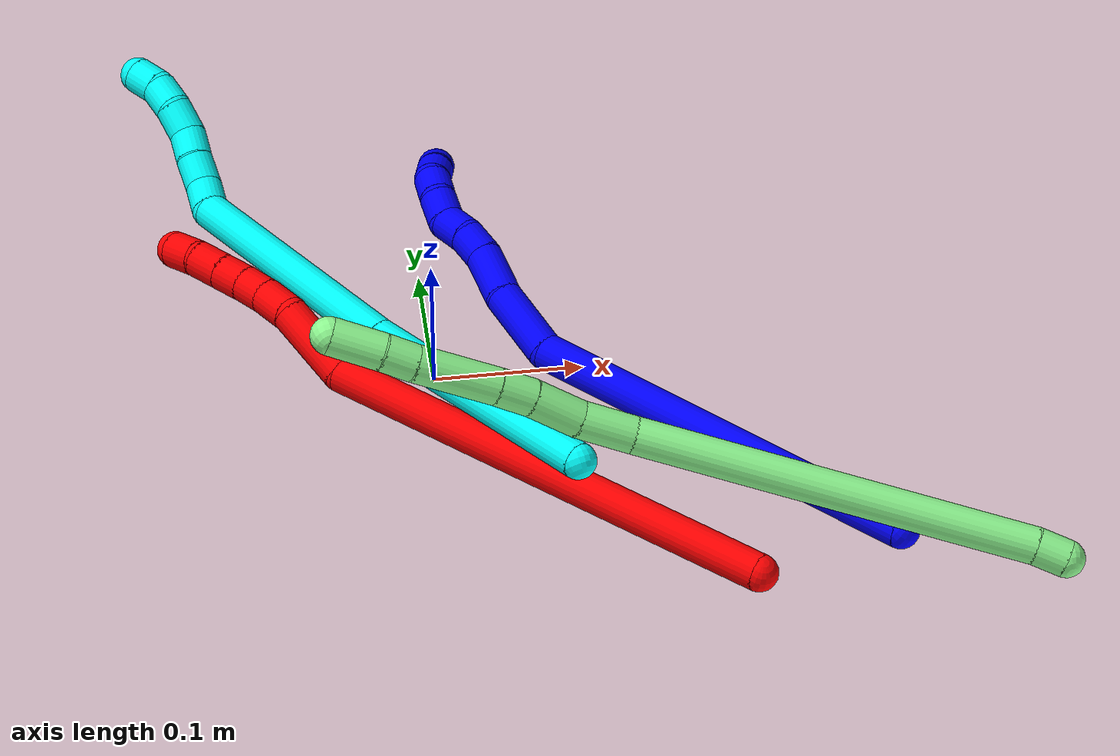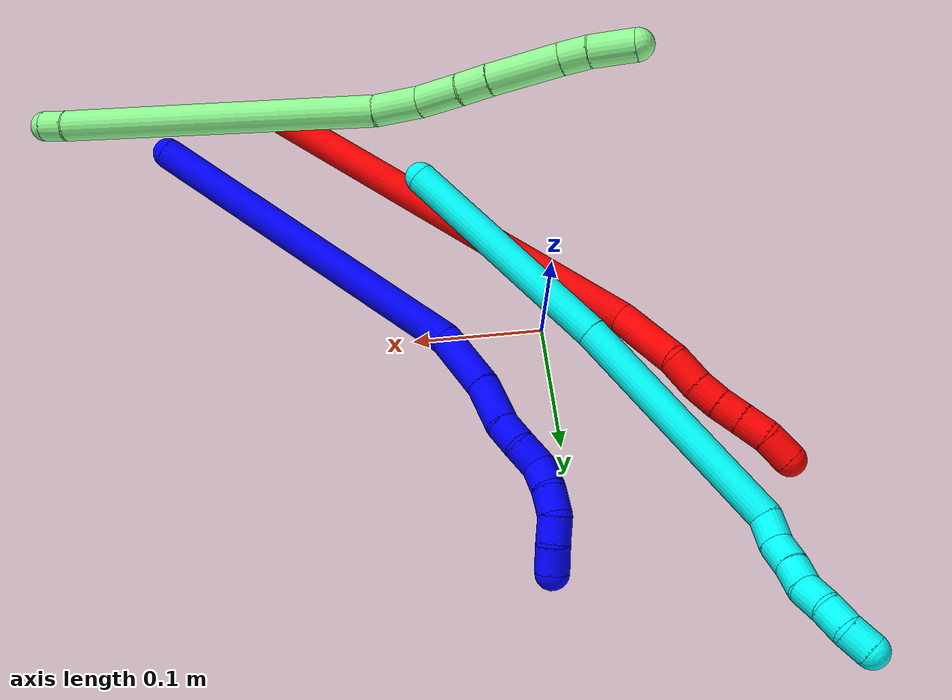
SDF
<sdf version="1.7">
 <world name="default">
  <model name="1">
   <static>0</static>
   <link name="1">
    <collision name="collision-cylinder-e_1_1_4">
     <pose>-0.063606 0.108191 -0.068221 -2.13339 -0.461484 0.805209</pose>
     <geometry><cylinder><radius>0.0125</radius><length>0.285693</length></cylinder></geometry>
     <surface>
      <friction><ode><mu>1.16</mu><mu2>1.16</mu2><slip1>0</slip1><slip2>0</slip2></ode></friction>
      <contact><ode><kp>1e+06</kp><kd>1</kd><max_vel>0</max_vel><min_depth>0.001</min_depth></ode></contact>
     </surface>
    </collision>
    <visual name="visual-cylinder-e_1_1_4">
     <pose>-0.063606 0.108191 -0.068221 -2.13339 -0.461484 0.805209</pose>
     <geometry><cylinder><radius>0.0125</radius><length>0.285693</length></cylinder></geometry>
     <material><ambient>0 0 1 1</ambient></material>
    </visual>
    <collision name="collision-cylinder-e_2_4_5">
     <pose>-0.133807 0.241659 -0.141501 -1.76833 -0.250417 0.304729</pose>
     <geometry><cylinder><radius>0.0125</radius><length>0.053216</length></cylinder></geometry>
     <surface>
      <friction><ode><mu>1.16</mu><mu2>1.16</mu2><slip1>0</slip1><slip2>0</slip2></ode></friction>
      <contact><ode><kp>1e+06</kp><kd>1</kd><max_vel>0</max_vel><min_depth>0.001</min_depth></ode></contact>
     </surface>
    </collision>
    <visual name="visual-cylinder-e_2_4_5">
     <pose>-0.133807 0.241659 -0.141501 -1.76833 -0.250417 0.304729</pose>
     <geometry><cylinder><radius>0.0125</radius><length>0.053216</length></cylinder></geometry>
     <material><ambient>0 0 1 1</ambient></material>
    </visual>
    <collision name="collision-cylinder-e_3_5_6">
     <pose>-0.141737 0.285508 -0.148725 -1.68683 -0.071394 0.080189</pose>
     <geometry><cylinder><radius>0.0125</radius><length>0.037493</length></cylinder></geometry>
     <surface>
      <friction><ode><mu>1.16</mu><mu2>1.16</mu2><slip1>0</slip1><slip2>0</slip2></ode></friction>
      <contact><ode><kp>1e+06</kp><kd>1</kd><max_vel>0</max_vel><min_depth>0.001</min_depth></ode></contact>
     </surface>
    </collision>
    <visual name="visual-cylinder-e_3_5_6">
     <pose>-0.141737 0.285508 -0.148725 -1.68683 -0.071394 0.080189</pose>
     <geometry><cylinder><radius>0.0125</radius><length>0.037493</length></cylinder></geometry>
     <material><ambient>0 0 1 1</ambient></material>
    </visual>
    <collision name="collision-cylinder-e_4_6_7">
     <pose>-0.145954 0.314001 -0.153238 -1.80321 -0.275259 0.346715</pose>
     <geometry><cylinder><radius>0.0125</radius><length>0.021185</length></cylinder></geometry>
     <surface>
      <friction><ode><mu>1.16</mu><mu2>1.16</mu2><slip1>0</slip1><slip2>0</slip2></ode></friction>
      <contact><ode><kp>1e+06</kp><kd>1</kd><max_vel>0</max_vel><min_depth>0.001</min_depth></ode></contact>
     </surface>
    </collision>
    <visual name="visual-cylinder-e_4_6_7">
     <pose>-0.145954 0.314001 -0.153238 -1.80321 -0.275259 0.346715</pose>
     <geometry><cylinder><radius>0.0125</radius><length>0.021185</length></cylinder></geometry>
     <material><ambient>0 0 1 1</ambient></material>
    </visual>
    <collision name="collision-cylinder-e_5_7_8">
     <pose>-0.151347 0.333117 -0.160341 -2.04802 -0.238231 0.388292</pose>
     <geometry><cylinder><radius>0.0125</radius><length>0.021307</length></cylinder></geometry>
     <surface>
      <friction><ode><mu>1.16</mu><mu2>1.16</mu2><slip1>0</slip1><slip2>0</slip2></ode></friction>
      <contact><ode><kp>1e+06</kp><kd>1</kd><max_vel>0</max_vel><min_depth>0.001</min_depth></ode></contact>
     </surface>
    </collision>
    <visual name="visual-cylinder-e_5_7_8">
     <pose>-0.151347 0.333117 -0.160341 -2.04802 -0.238231 0.388292</pose>
     <geometry><cylinder><radius>0.0125</radius><length>0.021307</length></cylinder></geometry>
     <material><ambient>0 0 1 1</ambient></material>
    </visual>
    <collision name="collision-cylinder-e_6_8_9">
     <pose>-0.15434 0.352674 -0.165393 -1.59943 -0.046162 0.047503</pose>
     <geometry><cylinder><radius>0.0125</radius><length>0.020754</length></cylinder></geometry>
     <surface>
      <friction><ode><mu>1.16</mu><mu2>1.16</mu2><slip1>0</slip1><slip2>0</slip2></ode></friction>
      <contact><ode><kp>1e+06</kp><kd>1</kd><max_vel>0</max_vel><min_depth>0.001</min_depth></ode></contact>
     </surface>
    </collision>
    <visual name="visual-cylinder-e_6_8_9">
     <pose>-0.15434 0.352674 -0.165393 -1.59943 -0.046162 0.047503</pose>
     <geometry><cylinder><radius>0.0125</radius><length>0.020754</length></cylinder></geometry>
     <material><ambient>0 0 1 1</ambient></material>
    </visual>
    <collision name="collision-cylinder-e_7_9_10">
     <pose>-0.153124 0.372863 -0.167551 -1.75802 0.167791 -0.202346</pose>
     <geometry><cylinder><radius>0.0125</radius><length>0.020289</length></cylinder></geometry>
     <surface>
      <friction><ode><mu>1.16</mu><mu2>1.16</mu2><slip1>0</slip1><slip2>0</slip2></ode></friction>
      <contact><ode><kp>1e+06</kp><kd>1</kd><max_vel>0</max_vel><min_depth>0.001</min_depth></ode></contact>
     </surface>
    </collision>
    <visual name="visual-cylinder-e_7_9_10">
     <pose>-0.153124 0.372863 -0.167551 -1.75802 0.167791 -0.202346</pose>
     <geometry><cylinder><radius>0.0125</radius><length>0.020289</length></cylinder></geometry>
     <material><ambient>0 0 1 1</ambient></material>
    </visual>
    <collision name="collision-cylinder-e_8_10_11">
     <pose>-0.146012 0.390614 -0.172305 -1.92077 0.570919 -0.794456</pose>
     <geometry><cylinder><radius>0.0125</radius><length>0.020051</length></cylinder></geometry>
     <surface>
      <friction><ode><mu>1.16</mu><mu2>1.16</mu2><slip1>0</slip1><slip2>0</slip2></ode></friction>
      <contact><ode><kp>1e+06</kp><kd>1</kd><max_vel>0</max_vel><min_depth>0.001</min_depth></ode></contact>
     </surface>
    </collision>
    <visual name="visual-cylinder-e_8_10_11">
     <pose>-0.146012 0.390614 -0.172305 -1.92077 0.570919 -0.794456</pose>
     <geometry><cylinder><radius>0.0125</radius><length>0.020051</length></cylinder></geometry>
     <material><ambient>0 0 1 1</ambient></material>
    </visual>
    <collision name="collision-cylinder-e_9_11_2">
     <pose>-0.13494 0.405295 -0.179941 -2.18289 0.600491 -1.07442</pose>
     <geometry><cylinder><radius>0.0125</radius><length>0.020012</length></cylinder></geometry>
     <surface>
      <friction><ode><mu>1.16</mu><mu2>1.16</mu2><slip1>0</slip1><slip2>0</slip2></ode></friction>
      <contact><ode><kp>1e+06</kp><kd>1</kd><max_vel>0</max_vel><min_depth>0.001</min_depth></ode></contact>
     </surface>
    </collision>
    <visual name="visual-cylinder-e_9_11_2">
     <pose>-0.13494 0.405295 -0.179941 -2.18289 0.600491 -1.07442</pose>
     <geometry><cylinder><radius>0.0125</radius><length>0.020012</length></cylinder></geometry>
     <material><ambient>0 0 1 1</ambient></material>
    </visual>
    <collision name="collision-sphere-2">
     <pose>-0.129287 0.412052 -0.184685 0 -0 0</pose>
     <geometry><sphere><radius>0.0125</radius></sphere></geometry>
     <surface>
      <friction><ode><mu>1.16</mu><mu2>1.16</mu2><slip1>0</slip1><slip2>0</slip2></ode></friction>
      <contact><ode><kp>1e+06</kp><kd>1</kd><max_vel>0</max_vel><min_depth>0.001</min_depth></ode></contact>
     </surface>
    </collision>
    <visual name="visual-sphere-2">
     <pose>-0.129287 0.412052 -0.184685 0 -0 0</pose>
     <geometry><sphere><radius>0.0125</radius></sphere></geometry>
     <material><ambient>0 0 1 1</ambient></material>
    </visual>
    <collision name="collision-sphere-11">
     <pose>-0.140594 0.398538 -0.175198 0 -0 0</pose>
     <geometry><sphere><radius>0.0125</radius></sphere></geometry>
     <surface>
      <friction><ode><mu>1.16</mu><mu2>1.16</mu2><slip1>0</slip1><slip2>0</slip2></ode></friction>
      <contact><ode><kp>1e+06</kp><kd>1</kd><max_vel>0</max_vel><min_depth>0.001</min_depth></ode></contact>
     </surface>
    </collision>
    <visual name="visual-sphere-11">
     <pose>-0.140594 0.398538 -0.175198 0 -0 0</pose>
     <geometry><sphere><radius>0.0125</radius></sphere></geometry>
     <material><ambient>0 0 1 1</ambient></material>
    </visual>
    <collision name="collision-sphere-10">
     <pose>-0.15143 0.38269 -0.169413 0 -0 0</pose>
     <geometry><sphere><radius>0.0125</radius></sphere></geometry>
     <surface>
      <friction><ode><mu>1.16</mu><mu2>1.16</mu2><slip1>0</slip1><slip2>0</slip2></ode></friction>
      <contact><ode><kp>1e+06</kp><kd>1</kd><max_vel>0</max_vel><min_depth>0.001</min_depth></ode></contact>
     </surface>
    </collision>
    <visual name="visual-sphere-10">
     <pose>-0.15143 0.38269 -0.169413 0 -0 0</pose>
     <geometry><sphere><radius>0.0125</radius></sphere></geometry>
     <material><ambient>0 0 1 1</ambient></material>
    </visual>
    <collision name="collision-sphere-9">
     <pose>-0.154818 0.363036 -0.165689 0 -0 0</pose>
     <geometry><sphere><radius>0.0125</radius></sphere></geometry>
     <surface>
      <friction><ode><mu>1.16</mu><mu2>1.16</mu2><slip1>0</slip1><slip2>0</slip2></ode></friction>
      <contact><ode><kp>1e+06</kp><kd>1</kd><max_vel>0</max_vel><min_depth>0.001</min_depth></ode></contact>
     </surface>
    </collision>
    <visual name="visual-sphere-9">
     <pose>-0.154818 0.363036 -0.165689 0 -0 0</pose>
     <geometry><sphere><radius>0.0125</radius></sphere></geometry>
     <material><ambient>0 0 1 1</ambient></material>
    </visual>
    <collision name="collision-sphere-4">
     <pose>-0.127213 0.216382 -0.136442 0 -0 0</pose>
     <geometry><sphere><radius>0.0125</radius></sphere></geometry>
     <surface>
      <friction><ode><mu>1.16</mu><mu2>1.16</mu2><slip1>0</slip1><slip2>0</slip2></ode></friction>
      <contact><ode><kp>1e+06</kp><kd>1</kd><max_vel>0</max_vel><min_depth>0.001</min_depth></ode></contact>
     </surface>
    </collision>
    <visual name="visual-sphere-4">
     <pose>-0.127213 0.216382 -0.136442 0 -0 0</pose>
     <geometry><sphere><radius>0.0125</radius></sphere></geometry>
     <material><ambient>0 0 1 1</ambient></material>
    </visual>
    <collision name="collision-sphere-1">
     <geometry><sphere><radius>0.0125</radius></sphere></geometry>
     <surface>
      <friction><ode><mu>1.16</mu><mu2>1.16</mu2><slip1>0</slip1><slip2>0</slip2></ode></friction>
      <contact><ode><kp>1e+06</kp><kd>1</kd><max_vel>0</max_vel><min_depth>0.001</min_depth></ode></contact>
     </surface>
    </collision>
    <visual name="visual-sphere-1">
     <geometry><sphere><radius>0.0125</radius></sphere></geometry>
     <material><ambient>0 0 1 1</ambient></material>
    </visual>
    <collision name="collision-sphere-8">
     <pose>-0.153861 0.342313 -0.165096 0 -0 0</pose>
     <geometry><sphere><radius>0.0125</radius></sphere></geometry>
     <surface>
      <friction><ode><mu>1.16</mu><mu2>1.16</mu2><slip1>0</slip1><slip2>0</slip2></ode></friction>
      <contact><ode><kp>1e+06</kp><kd>1</kd><max_vel>0</max_vel><min_depth>0.001</min_depth></ode></contact>
     </surface>
    </collision>
    <visual name="visual-sphere-8">
     <pose>-0.153861 0.342313 -0.165096 0 -0 0</pose>
     <geometry><sphere><radius>0.0125</radius></sphere></geometry>
     <material><ambient>0 0 1 1</ambient></material>
    </visual>
    <collision name="collision-sphere-5">
     <pose>-0.1404 0.266935 -0.14656 0 -0 0</pose>
     <geometry><sphere><radius>0.0125</radius></sphere></geometry>
     <surface>
      <friction><ode><mu>1.16</mu><mu2>1.16</mu2><slip1>0</slip1><slip2>0</slip2></ode></friction>
      <contact><ode><kp>1e+06</kp><kd>1</kd><max_vel>0</max_vel><min_depth>0.001</min_depth></ode></contact>
     </surface>
    </collision>
    <visual name="visual-sphere-5">
     <pose>-0.1404 0.266935 -0.14656 0 -0 0</pose>
     <geometry><sphere><radius>0.0125</radius></sphere></geometry>
     <material><ambient>0 0 1 1</ambient></material>
    </visual>
    <collision name="collision-sphere-6">
     <pose>-0.143075 0.304081 -0.15089 0 -0 0</pose>
     <geometry><sphere><radius>0.0125</radius></sphere></geometry>
     <surface>
      <friction><ode><mu>1.16</mu><mu2>1.16</mu2><slip1>0</slip1><slip2>0</slip2></ode></friction>
      <contact><ode><kp>1e+06</kp><kd>1</kd><max_vel>0</max_vel><min_depth>0.001</min_depth></ode></contact>
     </surface>
    </collision>
    <visual name="visual-sphere-6">
     <pose>-0.143075 0.304081 -0.15089 0 -0 0</pose>
     <geometry><sphere><radius>0.0125</radius></sphere></geometry>
     <material><ambient>0 0 1 1</ambient></material>
    </visual>
    <collision name="collision-sphere-7">
     <pose>-0.148833 0.323921 -0.155586 0 -0 0</pose>
     <geometry><sphere><radius>0.0125</radius></sphere></geometry>
     <surface>
      <friction><ode><mu>1.16</mu><mu2>1.16</mu2><slip1>0</slip1><slip2>0</slip2></ode></friction>
      <contact><ode><kp>1e+06</kp><kd>1</kd><max_vel>0</max_vel><min_depth>0.001</min_depth></ode></contact>
     </surface>
    </collision>
    <visual name="visual-sphere-7">
     <pose>-0.148833 0.323921 -0.155586 0 -0 0</pose>
     <geometry><sphere><radius>0.0125</radius></sphere></geometry>
     <material><ambient>0 0 1 1</ambient></material>
    </visual>
    <inertial>
     <pose>-0.097723 0.198102 -0.106294 0 -0 0</pose>
     <mass>0.5</mass>
     <inertia>
      <ixx>0.002495</ixx>
      <ixy>0</ixy>
      <ixz>0</ixz>
      <iyy>0.001103</iyy>
      <iyz>0</iyz>
      <izz>-0.000649</izz>
     </inertia>
    </inertial>
   </link>
   <pose>0.282916 -0.190446 0.012769 0.235091 0.56575 0.252354</pose>
  </model>
  <model name="2">
   <static>0</static>
   <link name="2">
    <collision name="collision-cylinder-e_1_1_4">
     <pose>-0.121181 0.103373 0.044527 -1.16408 -0.822285 0.558825</pose>
     <geometry><cylinder><radius>0.0125</radius><length>0.330778</length></cylinder></geometry>
     <surface>
      <friction><ode><mu>1.16</mu><mu2>1.16</mu2><slip1>0</slip1><slip2>0</slip2></ode></friction>
      <contact><ode><kp>1e+06</kp><kd>1</kd><max_vel>0</max_vel><min_depth>0.001</min_depth></ode></contact>
     </surface>
    </collision>
    <visual name="visual-cylinder-e_1_1_4">
     <pose>-0.121181 0.103373 0.044527 -1.16408 -0.822285 0.558825</pose>
     <geometry><cylinder><radius>0.0125</radius><length>0.330778</length></cylinder></geometry>
     <material><ambient>1 0 0 1</ambient></material>
    </visual>
    <collision name="collision-cylinder-e_2_4_5">
     <pose>-0.268485 0.218143 0.089789 -1.50637 -1.15867 1.10039</pose>
     <geometry><cylinder><radius>0.0125</radius><length>0.05702</length></cylinder></geometry>
     <surface>
      <friction><ode><mu>1.16</mu><mu2>1.16</mu2><slip1>0</slip1><slip2>0</slip2></ode></friction>
      <contact><ode><kp>1e+06</kp><kd>1</kd><max_vel>0</max_vel><min_depth>0.001</min_depth></ode></contact>
     </surface>
    </collision>
    <visual name="visual-cylinder-e_2_4_5">
     <pose>-0.268485 0.218143 0.089789 -1.50637 -1.15867 1.10039</pose>
     <geometry><cylinder><radius>0.0125</radius><length>0.05702</length></cylinder></geometry>
     <material><ambient>1 0 0 1</ambient></material>
    </visual>
    <collision name="collision-cylinder-e_3_5_6">
     <pose>-0.305881 0.234302 0.095413 -0.772429 -1.02635 0.450532</pose>
     <geometry><cylinder><radius>0.0125</radius><length>0.026356</length></cylinder></geometry>
     <surface>
      <friction><ode><mu>1.16</mu><mu2>1.16</mu2><slip1>0</slip1><slip2>0</slip2></ode></friction>
      <contact><ode><kp>1e+06</kp><kd>1</kd><max_vel>0</max_vel><min_depth>0.001</min_depth></ode></contact>
     </surface>
    </collision>
    <visual name="visual-cylinder-e_3_5_6">
     <pose>-0.305881 0.234302 0.095413 -0.772429 -1.02635 0.450532</pose>
     <geometry><cylinder><radius>0.0125</radius><length>0.026356</length></cylinder></geometry>
     <material><ambient>1 0 0 1</ambient></material>
    </visual>
    <collision name="collision-cylinder-e_4_6_7">
     <pose>-0.325422 0.244089 0.103664 -0.980862 -0.93946 0.529367</pose>
     <geometry><cylinder><radius>0.0125</radius><length>0.020486</length></cylinder></geometry>
     <surface>
      <friction><ode><mu>1.16</mu><mu2>1.16</mu2><slip1>0</slip1><slip2>0</slip2></ode></friction>
      <contact><ode><kp>1e+06</kp><kd>1</kd><max_vel>0</max_vel><min_depth>0.001</min_depth></ode></contact>
     </surface>
    </collision>
    <visual name="visual-cylinder-e_4_6_7">
     <pose>-0.325422 0.244089 0.103664 -0.980862 -0.93946 0.529367</pose>
     <geometry><cylinder><radius>0.0125</radius><length>0.020486</length></cylinder></geometry>
     <material><ambient>1 0 0 1</ambient></material>
    </visual>
    <collision name="collision-cylinder-e_5_7_8">
     <pose>-0.341407 0.254832 0.109908 -1.10424 -0.878174 0.563274</pose>
     <geometry><cylinder><radius>0.0125</radius><length>0.020055</length></cylinder></geometry>
     <surface>
      <friction><ode><mu>1.16</mu><mu2>1.16</mu2><slip1>0</slip1><slip2>0</slip2></ode></friction>
      <contact><ode><kp>1e+06</kp><kd>1</kd><max_vel>0</max_vel><min_depth>0.001</min_depth></ode></contact>
     </surface>
    </collision>
    <visual name="visual-cylinder-e_5_7_8">
     <pose>-0.341407 0.254832 0.109908 -1.10424 -0.878174 0.563274</pose>
     <geometry><cylinder><radius>0.0125</radius><length>0.020055</length></cylinder></geometry>
     <material><ambient>1 0 0 1</ambient></material>
    </visual>
    <collision name="collision-cylinder-e_6_8_9">
     <pose>-0.357733 0.266861 0.116058 -1.09275 -0.880657 0.558123</pose>
     <geometry><cylinder><radius>0.0125</radius><length>0.022327</length></cylinder></geometry>
     <surface>
      <friction><ode><mu>1.16</mu><mu2>1.16</mu2><slip1>0</slip1><slip2>0</slip2></ode></friction>
      <contact><ode><kp>1e+06</kp><kd>1</kd><max_vel>0</max_vel><min_depth>0.001</min_depth></ode></contact>
     </surface>
    </collision>
    <visual name="visual-cylinder-e_6_8_9">
     <pose>-0.357733 0.266861 0.116058 -1.09275 -0.880657 0.558123</pose>
     <geometry><cylinder><radius>0.0125</radius><length>0.022327</length></cylinder></geometry>
     <material><ambient>1 0 0 1</ambient></material>
    </visual>
    <collision name="collision-cylinder-e_7_9_2">
     <pose>-0.374847 0.27822 0.125173 -0.712341 -0.833476 0.326446</pose>
     <geometry><cylinder><radius>0.0125</radius><length>0.022978</length></cylinder></geometry>
     <surface>
      <friction><ode><mu>1.16</mu><mu2>1.16</mu2><slip1>0</slip1><slip2>0</slip2></ode></friction>
      <contact><ode><kp>1e+06</kp><kd>1</kd><max_vel>0</max_vel><min_depth>0.001</min_depth></ode></contact>
     </surface>
    </collision>
    <visual name="visual-cylinder-e_7_9_2">
     <pose>-0.374847 0.27822 0.125173 -0.712341 -0.833476 0.326446</pose>
     <geometry><cylinder><radius>0.0125</radius><length>0.022978</length></cylinder></geometry>
     <material><ambient>1 0 0 1</ambient></material>
    </visual>
    <collision name="collision-sphere-2">
     <pose>-0.383352 0.283269 0.131019 0 -0 0</pose>
     <geometry><sphere><radius>0.0125</radius></sphere></geometry>
     <surface>
      <friction><ode><mu>1.16</mu><mu2>1.16</mu2><slip1>0</slip1><slip2>0</slip2></ode></friction>
      <contact><ode><kp>1e+06</kp><kd>1</kd><max_vel>0</max_vel><min_depth>0.001</min_depth></ode></contact>
     </surface>
    </collision>
    <visual name="visual-sphere-2">
     <pose>-0.383352 0.283269 0.131019 0 -0 0</pose>
     <geometry><sphere><radius>0.0125</radius></sphere></geometry>
     <material><ambient>1 0 0 1</ambient></material>
    </visual>
    <collision name="collision-sphere-9">
     <pose>-0.366342 0.273172 0.119327 0 -0 0</pose>
     <geometry><sphere><radius>0.0125</radius></sphere></geometry>
     <surface>
      <friction><ode><mu>1.16</mu><mu2>1.16</mu2><slip1>0</slip1><slip2>0</slip2></ode></friction>
      <contact><ode><kp>1e+06</kp><kd>1</kd><max_vel>0</max_vel><min_depth>0.001</min_depth></ode></contact>
     </surface>
    </collision>
    <visual name="visual-sphere-9">
     <pose>-0.366342 0.273172 0.119327 0 -0 0</pose>
     <geometry><sphere><radius>0.0125</radius></sphere></geometry>
     <material><ambient>1 0 0 1</ambient></material>
    </visual>
    <collision name="collision-sphere-4">
     <pose>-0.242362 0.206747 0.089054 0 -0 0</pose>
     <geometry><sphere><radius>0.0125</radius></sphere></geometry>
     <surface>
      <friction><ode><mu>1.16</mu><mu2>1.16</mu2><slip1>0</slip1><slip2>0</slip2></ode></friction>
      <contact><ode><kp>1e+06</kp><kd>1</kd><max_vel>0</max_vel><min_depth>0.001</min_depth></ode></contact>
     </surface>
    </collision>
    <visual name="visual-sphere-4">
     <pose>-0.242362 0.206747 0.089054 0 -0 0</pose>
     <geometry><sphere><radius>0.0125</radius></sphere></geometry>
     <material><ambient>1 0 0 1</ambient></material>
    </visual>
    <collision name="collision-sphere-1">
     <geometry><sphere><radius>0.0125</radius></sphere></geometry>
     <surface>
      <friction><ode><mu>1.16</mu><mu2>1.16</mu2><slip1>0</slip1><slip2>0</slip2></ode></friction>
      <contact><ode><kp>1e+06</kp><kd>1</kd><max_vel>0</max_vel><min_depth>0.001</min_depth></ode></contact>
     </surface>
    </collision>
    <visual name="visual-sphere-1">
     <geometry><sphere><radius>0.0125</radius></sphere></geometry>
     <material><ambient>1 0 0 1</ambient></material>
    </visual>
    <collision name="collision-sphere-8">
     <pose>-0.349124 0.260551 0.112788 0 -0 0</pose>
     <geometry><sphere><radius>0.0125</radius></sphere></geometry>
     <surface>
      <friction><ode><mu>1.16</mu><mu2>1.16</mu2><slip1>0</slip1><slip2>0</slip2></ode></friction>
      <contact><ode><kp>1e+06</kp><kd>1</kd><max_vel>0</max_vel><min_depth>0.001</min_depth></ode></contact>
     </surface>
    </collision>
    <visual name="visual-sphere-8">
     <pose>-0.349124 0.260551 0.112788 0 -0 0</pose>
     <geometry><sphere><radius>0.0125</radius></sphere></geometry>
     <material><ambient>1 0 0 1</ambient></material>
    </visual>
    <collision name="collision-sphere-5">
     <pose>-0.294608 0.229539 0.090524 0 -0 0</pose>
     <geometry><sphere><radius>0.0125</radius></sphere></geometry>
     <surface>
      <friction><ode><mu>1.16</mu><mu2>1.16</mu2><slip1>0</slip1><slip2>0</slip2></ode></friction>
      <contact><ode><kp>1e+06</kp><kd>1</kd><max_vel>0</max_vel><min_depth>0.001</min_depth></ode></contact>
     </surface>
    </collision>
    <visual name="visual-sphere-5">
     <pose>-0.294608 0.229539 0.090524 0 -0 0</pose>
     <geometry><sphere><radius>0.0125</radius></sphere></geometry>
     <material><ambient>1 0 0 1</ambient></material>
    </visual>
    <collision name="collision-sphere-6">
     <pose>-0.317153 0.239066 0.100301 0 -0 0</pose>
     <geometry><sphere><radius>0.0125</radius></sphere></geometry>
     <surface>
      <friction><ode><mu>1.16</mu><mu2>1.16</mu2><slip1>0</slip1><slip2>0</slip2></ode></friction>
      <contact><ode><kp>1e+06</kp><kd>1</kd><max_vel>0</max_vel><min_depth>0.001</min_depth></ode></contact>
     </surface>
    </collision>
    <visual name="visual-sphere-6">
     <pose>-0.317153 0.239066 0.100301 0 -0 0</pose>
     <geometry><sphere><radius>0.0125</radius></sphere></geometry>
     <material><ambient>1 0 0 1</ambient></material>
    </visual>
    <collision name="collision-sphere-7">
     <pose>-0.33369 0.249113 0.107027 0 -0 0</pose>
     <geometry><sphere><radius>0.0125</radius></sphere></geometry>
     <surface>
      <friction><ode><mu>1.16</mu><mu2>1.16</mu2><slip1>0</slip1><slip2>0</slip2></ode></friction>
      <contact><ode><kp>1e+06</kp><kd>1</kd><max_vel>0</max_vel><min_depth>0.001</min_depth></ode></contact>
     </surface>
    </collision>
    <visual name="visual-sphere-7">
     <pose>-0.33369 0.249113 0.107027 0 -0 0</pose>
     <geometry><sphere><radius>0.0125</radius></sphere></geometry>
     <material><ambient>1 0 0 1</ambient></material>
    </visual>
    <inertial>
     <pose>-0.187137 0.150539 0.064316 0 -0 0</pose>
     <mass>0.5</mass>
     <inertia>
      <ixx>0.002828</ixx>
      <ixy>0</ixy>
      <ixz>0</ixz>
      <iyy>0.003243</iyy>
      <iyz>0</iyz>
      <izz>0.000348</izz>
     </inertia>
    </inertial>
   </link>
   <pose>0.186864 -0.21618 0.011496 2.99724 0.236372 -1.43744</pose>
  </model>
  <model name="3">
   <static>0</static>
   <link name="3">
    <collision name="collision-cylinder-e_1_1_4">
     <pose>-0.026113 0.058269 0.067675 -0.710849 -0.284481 0.106214</pose>
     <geometry><cylinder><radius>0.0125</radius><length>0.186087</length></cylinder></geometry>
     <surface>
      <friction><ode><mu>1.16</mu><mu2>1.16</mu2><slip1>0</slip1><slip2>0</slip2></ode></friction>
      <contact><ode><kp>1e+06</kp><kd>1</kd><max_vel>0</max_vel><min_depth>0.001</min_depth></ode></contact>
     </surface>
    </collision>
    <visual name="visual-cylinder-e_1_1_4">
     <pose>-0.026113 0.058269 0.067675 -0.710849 -0.284481 0.106214</pose>
     <geometry><cylinder><radius>0.0125</radius><length>0.186087</length></cylinder></geometry>
     <material><ambient>0.003922 1 0.996078 1</ambient></material>
    </visual>
    <collision name="collision-cylinder-e_2_4_5">
     <pose>-0.070936 0.175783 0.204743 -0.706679 -0.20224 0.07481</pose>
     <geometry><cylinder><radius>0.0125</radius><length>0.186284</length></cylinder></geometry>
     <surface>
      <friction><ode><mu>1.16</mu><mu2>1.16</mu2><slip1>0</slip1><slip2>0</slip2></ode></friction>
      <contact><ode><kp>1e+06</kp><kd>1</kd><max_vel>0</max_vel><min_depth>0.001</min_depth></ode></contact>
     </surface>
    </collision>
    <visual name="visual-cylinder-e_2_4_5">
     <pose>-0.070936 0.175783 0.204743 -0.706679 -0.20224 0.07481</pose>
     <geometry><cylinder><radius>0.0125</radius><length>0.186284</length></cylinder></geometry>
     <material><ambient>0.003922 1 0.996078 1</ambient></material>
    </visual>
    <collision name="collision-cylinder-e_3_5_6">
     <pose>-0.086818 0.2404 0.283735 -0.510132 0.251588 -0.065925</pose>
     <geometry><cylinder><radius>0.0125</radius><length>0.022713</length></cylinder></geometry>
     <surface>
      <friction><ode><mu>1.16</mu><mu2>1.16</mu2><slip1>0</slip1><slip2>0</slip2></ode></friction>
      <contact><ode><kp>1e+06</kp><kd>1</kd><max_vel>0</max_vel><min_depth>0.001</min_depth></ode></contact>
     </surface>
    </collision>
    <visual name="visual-cylinder-e_3_5_6">
     <pose>-0.086818 0.2404 0.283735 -0.510132 0.251588 -0.065925</pose>
     <geometry><cylinder><radius>0.0125</radius><length>0.022713</length></cylinder></geometry>
     <material><ambient>0.003922 1 0.996078 1</ambient></material>
    </visual>
    <collision name="collision-cylinder-e_4_6_7">
     <pose>-0.083003 0.247955 0.304077 -0.200641 0.089851 -0.00905</pose>
     <geometry><cylinder><radius>0.0125</radius><length>0.022014</length></cylinder></geometry>
     <surface>
      <friction><ode><mu>1.16</mu><mu2>1.16</mu2><slip1>0</slip1><slip2>0</slip2></ode></friction>
      <contact><ode><kp>1e+06</kp><kd>1</kd><max_vel>0</max_vel><min_depth>0.001</min_depth></ode></contact>
     </surface>
    </collision>
    <visual name="visual-cylinder-e_4_6_7">
     <pose>-0.083003 0.247955 0.304077 -0.200641 0.089851 -0.00905</pose>
     <geometry><cylinder><radius>0.0125</radius><length>0.022014</length></cylinder></geometry>
     <material><ambient>0.003922 1 0.996078 1</ambient></material>
    </visual>
    <collision name="collision-cylinder-e_5_7_8">
     <pose>-0.080155 0.252824 0.324473 -0.271179 0.183567 -0.025113</pose>
     <geometry><cylinder><radius>0.0125</radius><length>0.020382</length></cylinder></geometry>
     <surface>
      <friction><ode><mu>1.16</mu><mu2>1.16</mu2><slip1>0</slip1><slip2>0</slip2></ode></friction>
      <contact><ode><kp>1e+06</kp><kd>1</kd><max_vel>0</max_vel><min_depth>0.001</min_depth></ode></contact>
     </surface>
    </collision>
    <visual name="visual-cylinder-e_5_7_8">
     <pose>-0.080155 0.252824 0.324473 -0.271179 0.183567 -0.025113</pose>
     <geometry><cylinder><radius>0.0125</radius><length>0.020382</length></cylinder></geometry>
     <material><ambient>0.003922 1 0.996078 1</ambient></material>
    </visual>
    <collision name="collision-cylinder-e_6_8_9">
     <pose>-0.079298 0.257159 0.345004 -0.150653 -0.090901 0.006865</pose>
     <geometry><cylinder><radius>0.0125</radius><length>0.022095</length></cylinder></geometry>
     <surface>
      <friction><ode><mu>1.16</mu><mu2>1.16</mu2><slip1>0</slip1><slip2>0</slip2></ode></friction>
      <contact><ode><kp>1e+06</kp><kd>1</kd><max_vel>0</max_vel><min_depth>0.001</min_depth></ode></contact>
     </surface>
    </collision>
    <visual name="visual-cylinder-e_6_8_9">
     <pose>-0.079298 0.257159 0.345004 -0.150653 -0.090901 0.006865</pose>
     <geometry><cylinder><radius>0.0125</radius><length>0.022095</length></cylinder></geometry>
     <material><ambient>0.003922 1 0.996078 1</ambient></material>
    </visual>
    <collision name="collision-cylinder-e_7_9_10">
     <pose>-0.081362 0.262786 0.365114 -0.406611 -0.105228 0.021712</pose>
     <geometry><cylinder><radius>0.0125</radius><length>0.020217</length></cylinder></geometry>
     <surface>
      <friction><ode><mu>1.16</mu><mu2>1.16</mu2><slip1>0</slip1><slip2>0</slip2></ode></friction>
      <contact><ode><kp>1e+06</kp><kd>1</kd><max_vel>0</max_vel><min_depth>0.001</min_depth></ode></contact>
     </surface>
    </collision>
    <visual name="visual-cylinder-e_7_9_10">
     <pose>-0.081362 0.262786 0.365114 -0.406611 -0.105228 0.021712</pose>
     <geometry><cylinder><radius>0.0125</radius><length>0.020217</length></cylinder></geometry>
     <material><ambient>0.003922 1 0.996078 1</ambient></material>
    </visual>
    <collision name="collision-cylinder-e_8_10_2">
     <pose>-0.085521 0.272732 0.381887 -0.669726 -0.311526 0.109178</pose>
     <geometry><cylinder><radius>0.0125</radius><length>0.020207</length></cylinder></geometry>
     <surface>
      <friction><ode><mu>1.16</mu><mu2>1.16</mu2><slip1>0</slip1><slip2>0</slip2></ode></friction>
      <contact><ode><kp>1e+06</kp><kd>1</kd><max_vel>0</max_vel><min_depth>0.001</min_depth></ode></contact>
     </surface>
    </collision>
    <visual name="visual-cylinder-e_8_10_2">
     <pose>-0.085521 0.272732 0.381887 -0.669726 -0.311526 0.109178</pose>
     <geometry><cylinder><radius>0.0125</radius><length>0.020207</length></cylinder></geometry>
     <material><ambient>0.003922 1 0.996078 1</ambient></material>
    </visual>
    <collision name="collision-sphere-2">
     <pose>-0.088618 0.278702 0.389427 0 -0 0</pose>
     <geometry><sphere><radius>0.0125</radius></sphere></geometry>
     <surface>
      <friction><ode><mu>1.16</mu><mu2>1.16</mu2><slip1>0</slip1><slip2>0</slip2></ode></friction>
      <contact><ode><kp>1e+06</kp><kd>1</kd><max_vel>0</max_vel><min_depth>0.001</min_depth></ode></contact>
     </surface>
    </collision>
    <visual name="visual-sphere-2">
     <pose>-0.088618 0.278702 0.389427 0 -0 0</pose>
     <geometry><sphere><radius>0.0125</radius></sphere></geometry>
     <material><ambient>0.003922 1 0.996078 1</ambient></material>
    </visual>
    <collision name="collision-sphere-10">
     <pose>-0.082424 0.266762 0.374347 0 -0 0</pose>
     <geometry><sphere><radius>0.0125</radius></sphere></geometry>
     <surface>
      <friction><ode><mu>1.16</mu><mu2>1.16</mu2><slip1>0</slip1><slip2>0</slip2></ode></friction>
      <contact><ode><kp>1e+06</kp><kd>1</kd><max_vel>0</max_vel><min_depth>0.001</min_depth></ode></contact>
     </surface>
    </collision>
    <visual name="visual-sphere-10">
     <pose>-0.082424 0.266762 0.374347 0 -0 0</pose>
     <geometry><sphere><radius>0.0125</radius></sphere></geometry>
     <material><ambient>0.003922 1 0.996078 1</ambient></material>
    </visual>
    <collision name="collision-sphere-9">
     <pose>-0.0803 0.25881 0.355881 0 -0 0</pose>
     <geometry><sphere><radius>0.0125</radius></sphere></geometry>
     <surface>
      <friction><ode><mu>1.16</mu><mu2>1.16</mu2><slip1>0</slip1><slip2>0</slip2></ode></friction>
      <contact><ode><kp>1e+06</kp><kd>1</kd><max_vel>0</max_vel><min_depth>0.001</min_depth></ode></contact>
     </surface>
    </collision>
    <visual name="visual-sphere-9">
     <pose>-0.0803 0.25881 0.355881 0 -0 0</pose>
     <geometry><sphere><radius>0.0125</radius></sphere></geometry>
     <material><ambient>0.003922 1 0.996078 1</ambient></material>
    </visual>
    <collision name="collision-sphere-4">
     <pose>-0.052227 0.116537 0.13535 0 -0 0</pose>
     <geometry><sphere><radius>0.0125</radius></sphere></geometry>
     <surface>
      <friction><ode><mu>1.16</mu><mu2>1.16</mu2><slip1>0</slip1><slip2>0</slip2></ode></friction>
      <contact><ode><kp>1e+06</kp><kd>1</kd><max_vel>0</max_vel><min_depth>0.001</min_depth></ode></contact>
     </surface>
    </collision>
    <visual name="visual-sphere-4">
     <pose>-0.052227 0.116537 0.13535 0 -0 0</pose>
     <geometry><sphere><radius>0.0125</radius></sphere></geometry>
     <material><ambient>0.003922 1 0.996078 1</ambient></material>
    </visual>
    <collision name="collision-sphere-1">
     <geometry><sphere><radius>0.0125</radius></sphere></geometry>
     <surface>
      <friction><ode><mu>1.16</mu><mu2>1.16</mu2><slip1>0</slip1><slip2>0</slip2></ode></friction>
      <contact><ode><kp>1e+06</kp><kd>1</kd><max_vel>0</max_vel><min_depth>0.001</min_depth></ode></contact>
     </surface>
    </collision>
    <visual name="visual-sphere-1">
     <geometry><sphere><radius>0.0125</radius></sphere></geometry>
     <material><ambient>0.003922 1 0.996078 1</ambient></material>
    </visual>
    <collision name="collision-sphere-8">
     <pose>-0.078295 0.255508 0.334126 0 -0 0</pose>
     <geometry><sphere><radius>0.0125</radius></sphere></geometry>
     <surface>
      <friction><ode><mu>1.16</mu><mu2>1.16</mu2><slip1>0</slip1><slip2>0</slip2></ode></friction>
      <contact><ode><kp>1e+06</kp><kd>1</kd><max_vel>0</max_vel><min_depth>0.001</min_depth></ode></contact>
     </surface>
    </collision>
    <visual name="visual-sphere-8">
     <pose>-0.078295 0.255508 0.334126 0 -0 0</pose>
     <geometry><sphere><radius>0.0125</radius></sphere></geometry>
     <material><ambient>0.003922 1 0.996078 1</ambient></material>
    </visual>
    <collision name="collision-sphere-5">
     <pose>-0.089645 0.235029 0.274136 0 -0 0</pose>
     <geometry><sphere><radius>0.0125</radius></sphere></geometry>
     <surface>
      <friction><ode><mu>1.16</mu><mu2>1.16</mu2><slip1>0</slip1><slip2>0</slip2></ode></friction>
      <contact><ode><kp>1e+06</kp><kd>1</kd><max_vel>0</max_vel><min_depth>0.001</min_depth></ode></contact>
     </surface>
    </collision>
    <visual name="visual-sphere-5">
     <pose>-0.089645 0.235029 0.274136 0 -0 0</pose>
     <geometry><sphere><radius>0.0125</radius></sphere></geometry>
     <material><ambient>0.003922 1 0.996078 1</ambient></material>
    </visual>
    <collision name="collision-sphere-6">
     <pose>-0.083991 0.24577 0.293334 0 -0 0</pose>
     <geometry><sphere><radius>0.0125</radius></sphere></geometry>
     <surface>
      <friction><ode><mu>1.16</mu><mu2>1.16</mu2><slip1>0</slip1><slip2>0</slip2></ode></friction>
      <contact><ode><kp>1e+06</kp><kd>1</kd><max_vel>0</max_vel><min_depth>0.001</min_depth></ode></contact>
     </surface>
    </collision>
    <visual name="visual-sphere-6">
     <pose>-0.083991 0.24577 0.293334 0 -0 0</pose>
     <geometry><sphere><radius>0.0125</radius></sphere></geometry>
     <material><ambient>0.003922 1 0.996078 1</ambient></material>
    </visual>
    <collision name="collision-sphere-7">
     <pose>-0.082015 0.25014 0.314819 0 -0 0</pose>
     <geometry><sphere><radius>0.0125</radius></sphere></geometry>
     <surface>
      <friction><ode><mu>1.16</mu><mu2>1.16</mu2><slip1>0</slip1><slip2>0</slip2></ode></friction>
      <contact><ode><kp>1e+06</kp><kd>1</kd><max_vel>0</max_vel><min_depth>0.001</min_depth></ode></contact>
     </surface>
    </collision>
    <visual name="visual-sphere-7">
     <pose>-0.082015 0.25014 0.314819 0 -0 0</pose>
     <geometry><sphere><radius>0.0125</radius></sphere></geometry>
     <material><ambient>0.003922 1 0.996078 1</ambient></material>
    </visual>
    <inertial>
     <pose>-0.057263 0.152333 0.186414 0 -0 0</pose>
     <mass>0.5</mass>
     <inertia>
      <ixx>0.001151</ixx>
      <ixy>0</ixy>
      <ixz>0</ixz>
      <iyy>0.000966</iyy>
      <iyz>0</iyz>
      <izz>-0.000399</izz>
     </inertia>
    </inertial>
   </link>
   <pose>0.080859 -0.126811 0.038038 -0.956467 0.083158 0.371057</pose>
  </model>
  <model name="13">
   <static>0</static>
   <link name="13">
    <collision name="collision-cylinder-e_1_1_4">
     <pose>-0.008747 0.002714 -0.005732 -2.69941 -0.94346 2.31158</pose>
     <geometry><cylinder><radius>0.0125</radius><length>0.021607</length></cylinder></geometry>
     <surface>
      <friction><ode><mu>1.16</mu><mu2>1.16</mu2><slip1>0</slip1><slip2>0</slip2></ode></friction>
      <contact><ode><kp>1e+06</kp><kd>1</kd><max_vel>0</max_vel><min_depth>0.001</min_depth></ode></contact>
     </surface>
    </collision>
    <visual name="visual-cylinder-e_1_1_4">
     <pose>-0.008747 0.002714 -0.005732 -2.69941 -0.94346 2.31158</pose>
     <geometry><cylinder><radius>0.0125</radius><length>0.021607</length></cylinder></geometry>
     <material><ambient>0.564706 0.984314 0.572549 1</ambient></material>
    </visual>
    <collision name="collision-cylinder-e_2_4_5">
     <pose>-0.134854 0.031199 -0.071407 -2.73556 -1.06338 2.46828</pose>
     <geometry><cylinder><radius>0.0125</radius><length>0.268558</length></cylinder></geometry>
     <surface>
      <friction><ode><mu>1.16</mu><mu2>1.16</mu2><slip1>0</slip1><slip2>0</slip2></ode></friction>
      <contact><ode><kp>1e+06</kp><kd>1</kd><max_vel>0</max_vel><min_depth>0.001</min_depth></ode></contact>
     </surface>
    </collision>
    <visual name="visual-cylinder-e_2_4_5">
     <pose>-0.134854 0.031199 -0.071407 -2.73556 -1.06338 2.46828</pose>
     <geometry><cylinder><radius>0.0125</radius><length>0.268558</length></cylinder></geometry>
     <material><ambient>0.564706 0.984314 0.572549 1</ambient></material>
    </visual>
    <collision name="collision-cylinder-e_3_5_6">
     <pose>-0.26856 0.062708 -0.138136 -2.43959 -1.07284 2.03762</pose>
     <geometry><cylinder><radius>0.0125</radius><length>0.03721</length></cylinder></geometry>
     <surface>
      <friction><ode><mu>1.16</mu><mu2>1.16</mu2><slip1>0</slip1><slip2>0</slip2></ode></friction>
      <contact><ode><kp>1e+06</kp><kd>1</kd><max_vel>0</max_vel><min_depth>0.001</min_depth></ode></contact>
     </surface>
    </collision>
    <visual name="visual-cylinder-e_3_5_6">
     <pose>-0.26856 0.062708 -0.138136 -2.43959 -1.07284 2.03762</pose>
     <geometry><cylinder><radius>0.0125</radius><length>0.03721</length></cylinder></geometry>
     <material><ambient>0.564706 0.984314 0.572549 1</ambient></material>
    </visual>
    <collision name="collision-cylinder-e_4_6_7">
     <pose>-0.298852 0.076282 -0.151562 -2.27385 -0.935983 1.65771</pose>
     <geometry><cylinder><radius>0.0125</radius><length>0.034641</length></cylinder></geometry>
     <surface>
      <friction><ode><mu>1.16</mu><mu2>1.16</mu2><slip1>0</slip1><slip2>0</slip2></ode></friction>
      <contact><ode><kp>1e+06</kp><kd>1</kd><max_vel>0</max_vel><min_depth>0.001</min_depth></ode></contact>
     </surface>
    </collision>
    <visual name="visual-cylinder-e_4_6_7">
     <pose>-0.298852 0.076282 -0.151562 -2.27385 -0.935983 1.65771</pose>
     <geometry><cylinder><radius>0.0125</radius><length>0.034641</length></cylinder></geometry>
     <material><ambient>0.564706 0.984314 0.572549 1</ambient></material>
    </visual>
    <collision name="collision-cylinder-e_5_7_8">
     <pose>-0.32332 0.089069 -0.16199 -2.22374 -1.03599 1.71302</pose>
     <geometry><cylinder><radius>0.0125</radius><length>0.024459</length></cylinder></geometry>
     <surface>
      <friction><ode><mu>1.16</mu><mu2>1.16</mu2><slip1>0</slip1><slip2>0</slip2></ode></friction>
      <contact><ode><kp>1e+06</kp><kd>1</kd><max_vel>0</max_vel><min_depth>0.001</min_depth></ode></contact>
     </surface>
    </collision>
    <visual name="visual-cylinder-e_5_7_8">
     <pose>-0.32332 0.089069 -0.16199 -2.22374 -1.03599 1.71302</pose>
     <geometry><cylinder><radius>0.0125</radius><length>0.024459</length></cylinder></geometry>
     <material><ambient>0.564706 0.984314 0.572549 1</ambient></material>
    </visual>
    <collision name="collision-cylinder-e_6_8_9">
     <pose>-0.35868 0.104221 -0.17436 -2.27032 -1.07817 1.81908</pose>
     <geometry><cylinder><radius>0.0125</radius><length>0.05638</length></cylinder></geometry>
     <surface>
      <friction><ode><mu>1.16</mu><mu2>1.16</mu2><slip1>0</slip1><slip2>0</slip2></ode></friction>
      <contact><ode><kp>1e+06</kp><kd>1</kd><max_vel>0</max_vel><min_depth>0.001</min_depth></ode></contact>
     </surface>
    </collision>
    <visual name="visual-cylinder-e_6_8_9">
     <pose>-0.35868 0.104221 -0.17436 -2.27032 -1.07817 1.81908</pose>
     <geometry><cylinder><radius>0.0125</radius><length>0.05638</length></cylinder></geometry>
     <material><ambient>0.564706 0.984314 0.572549 1</ambient></material>
    </visual>
    <collision name="collision-cylinder-e_7_9_10">
     <pose>-0.392829 0.118513 -0.186899 -2.33933 -1.02232 1.8467</pose>
     <geometry><cylinder><radius>0.0125</radius><length>0.021825</length></cylinder></geometry>
     <surface>
      <friction><ode><mu>1.16</mu><mu2>1.16</mu2><slip1>0</slip1><slip2>0</slip2></ode></friction>
      <contact><ode><kp>1e+06</kp><kd>1</kd><max_vel>0</max_vel><min_depth>0.001</min_depth></ode></contact>
     </surface>
    </collision>
    <visual name="visual-cylinder-e_7_9_10">
     <pose>-0.392829 0.118513 -0.186899 -2.33933 -1.02232 1.8467</pose>
     <geometry><cylinder><radius>0.0125</radius><length>0.021825</length></cylinder></geometry>
     <material><ambient>0.564706 0.984314 0.572549 1</ambient></material>
    </visual>
    <collision name="collision-cylinder-e_8_10_2">
     <pose>-0.417521 0.12743 -0.198068 -2.55196 -1.05697 2.18243</pose>
     <geometry><cylinder><radius>0.0125</radius><length>0.03532</length></cylinder></geometry>
     <surface>
      <friction><ode><mu>1.16</mu><mu2>1.16</mu2><slip1>0</slip1><slip2>0</slip2></ode></friction>
      <contact><ode><kp>1e+06</kp><kd>1</kd><max_vel>0</max_vel><min_depth>0.001</min_depth></ode></contact>
     </surface>
    </collision>
    <visual name="visual-cylinder-e_8_10_2">
     <pose>-0.417521 0.12743 -0.198068 -2.55196 -1.05697 2.18243</pose>
     <geometry><cylinder><radius>0.0125</radius><length>0.03532</length></cylinder></geometry>
     <material><ambient>0.564706 0.984314 0.572549 1</ambient></material>
    </visual>
    <collision name="collision-sphere-2">
     <pose>-0.4329 0.132256 -0.205282 0 -0 0</pose>
     <geometry><sphere><radius>0.0125</radius></sphere></geometry>
     <surface>
      <friction><ode><mu>1.16</mu><mu2>1.16</mu2><slip1>0</slip1><slip2>0</slip2></ode></friction>
      <contact><ode><kp>1e+06</kp><kd>1</kd><max_vel>0</max_vel><min_depth>0.001</min_depth></ode></contact>
     </surface>
    </collision>
    <visual name="visual-sphere-2">
     <pose>-0.4329 0.132256 -0.205282 0 -0 0</pose>
     <geometry><sphere><radius>0.0125</radius></sphere></geometry>
     <material><ambient>0.564706 0.984314 0.572549 1</ambient></material>
    </visual>
    <collision name="collision-sphere-10">
     <pose>-0.402141 0.122603 -0.190854 0 -0 0</pose>
     <geometry><sphere><radius>0.0125</radius></sphere></geometry>
     <surface>
      <friction><ode><mu>1.16</mu><mu2>1.16</mu2><slip1>0</slip1><slip2>0</slip2></ode></friction>
      <contact><ode><kp>1e+06</kp><kd>1</kd><max_vel>0</max_vel><min_depth>0.001</min_depth></ode></contact>
     </surface>
    </collision>
    <visual name="visual-sphere-10">
     <pose>-0.402141 0.122603 -0.190854 0 -0 0</pose>
     <geometry><sphere><radius>0.0125</radius></sphere></geometry>
     <material><ambient>0.564706 0.984314 0.572549 1</ambient></material>
    </visual>
    <collision name="collision-sphere-9">
     <pose>-0.383518 0.114422 -0.182944 0 -0 0</pose>
     <geometry><sphere><radius>0.0125</radius></sphere></geometry>
     <surface>
      <friction><ode><mu>1.16</mu><mu2>1.16</mu2><slip1>0</slip1><slip2>0</slip2></ode></friction>
      <contact><ode><kp>1e+06</kp><kd>1</kd><max_vel>0</max_vel><min_depth>0.001</min_depth></ode></contact>
     </surface>
    </collision>
    <visual name="visual-sphere-9">
     <pose>-0.383518 0.114422 -0.182944 0 -0 0</pose>
     <geometry><sphere><radius>0.0125</radius></sphere></geometry>
     <material><ambient>0.564706 0.984314 0.572549 1</ambient></material>
    </visual>
    <collision name="collision-sphere-4">
     <pose>-0.017493 0.005427 -0.011463 0 -0 0</pose>
     <geometry><sphere><radius>0.0125</radius></sphere></geometry>
     <surface>
      <friction><ode><mu>1.16</mu><mu2>1.16</mu2><slip1>0</slip1><slip2>0</slip2></ode></friction>
      <contact><ode><kp>1e+06</kp><kd>1</kd><max_vel>0</max_vel><min_depth>0.001</min_depth></ode></contact>
     </surface>
    </collision>
    <visual name="visual-sphere-4">
     <pose>-0.017493 0.005427 -0.011463 0 -0 0</pose>
     <geometry><sphere><radius>0.0125</radius></sphere></geometry>
     <material><ambient>0.564706 0.984314 0.572549 1</ambient></material>
    </visual>
    <collision name="collision-sphere-1">
     <geometry><sphere><radius>0.0125</radius></sphere></geometry>
     <surface>
      <friction><ode><mu>1.16</mu><mu2>1.16</mu2><slip1>0</slip1><slip2>0</slip2></ode></friction>
      <contact><ode><kp>1e+06</kp><kd>1</kd><max_vel>0</max_vel><min_depth>0.001</min_depth></ode></contact>
     </surface>
    </collision>
    <visual name="visual-sphere-1">
     <geometry><sphere><radius>0.0125</radius></sphere></geometry>
     <material><ambient>0.564706 0.984314 0.572549 1</ambient></material>
    </visual>
    <collision name="collision-sphere-8">
     <pose>-0.333842 0.09402 -0.165776 0 -0 0</pose>
     <geometry><sphere><radius>0.0125</radius></sphere></geometry>
     <surface>
      <friction><ode><mu>1.16</mu><mu2>1.16</mu2><slip1>0</slip1><slip2>0</slip2></ode></friction>
      <contact><ode><kp>1e+06</kp><kd>1</kd><max_vel>0</max_vel><min_depth>0.001</min_depth></ode></contact>
     </surface>
    </collision>
    <visual name="visual-sphere-8">
     <pose>-0.333842 0.09402 -0.165776 0 -0 0</pose>
     <geometry><sphere><radius>0.0125</radius></sphere></geometry>
     <material><ambient>0.564706 0.984314 0.572549 1</ambient></material>
    </visual>
    <collision name="collision-sphere-5">
     <pose>-0.252214 0.05697 -0.13135 0 -0 0</pose>
     <geometry><sphere><radius>0.0125</radius></sphere></geometry>
     <surface>
      <friction><ode><mu>1.16</mu><mu2>1.16</mu2><slip1>0</slip1><slip2>0</slip2></ode></friction>
      <contact><ode><kp>1e+06</kp><kd>1</kd><max_vel>0</max_vel><min_depth>0.001</min_depth></ode></contact>
     </surface>
    </collision>
    <visual name="visual-sphere-5">
     <pose>-0.252214 0.05697 -0.13135 0 -0 0</pose>
     <geometry><sphere><radius>0.0125</radius></sphere></geometry>
     <material><ambient>0.564706 0.984314 0.572549 1</ambient></material>
    </visual>
    <collision name="collision-sphere-6">
     <pose>-0.284906 0.068446 -0.144921 0 -0 0</pose>
     <geometry><sphere><radius>0.0125</radius></sphere></geometry>
     <surface>
      <friction><ode><mu>1.16</mu><mu2>1.16</mu2><slip1>0</slip1><slip2>0</slip2></ode></friction>
      <contact><ode><kp>1e+06</kp><kd>1</kd><max_vel>0</max_vel><min_depth>0.001</min_depth></ode></contact>
     </surface>
    </collision>
    <visual name="visual-sphere-6">
     <pose>-0.284906 0.068446 -0.144921 0 -0 0</pose>
     <geometry><sphere><radius>0.0125</radius></sphere></geometry>
     <material><ambient>0.564706 0.984314 0.572549 1</ambient></material>
    </visual>
    <collision name="collision-sphere-7">
     <pose>-0.312798 0.084118 -0.158203 0 -0 0</pose>
     <geometry><sphere><radius>0.0125</radius></sphere></geometry>
     <surface>
      <friction><ode><mu>1.16</mu><mu2>1.16</mu2><slip1>0</slip1><slip2>0</slip2></ode></friction>
      <contact><ode><kp>1e+06</kp><kd>1</kd><max_vel>0</max_vel><min_depth>0.001</min_depth></ode></contact>
     </surface>
    </collision>
    <visual name="visual-sphere-7">
     <pose>-0.312798 0.084118 -0.158203 0 -0 0</pose>
     <geometry><sphere><radius>0.0125</radius></sphere></geometry>
     <material><ambient>0.564706 0.984314 0.572549 1</ambient></material>
    </visual>
    <inertial>
     <pose>-0.216402 0.05711 -0.109117 0 -0 0</pose>
     <mass>0.5</mass>
     <inertia>
      <ixx>-0.000147</ixx>
      <ixy>0</ixy>
      <ixz>0</ixz>
      <iyy>0.002068</iyy>
      <iyz>0</iyz>
      <izz>0.001112</izz>
     </inertia>
    </inertial>
   </link>
   <pose>0.383739 -0.229037 0.012498 1.73039 -0.008065 0.190006</pose>
  </model>
 </world>
</sdf>
